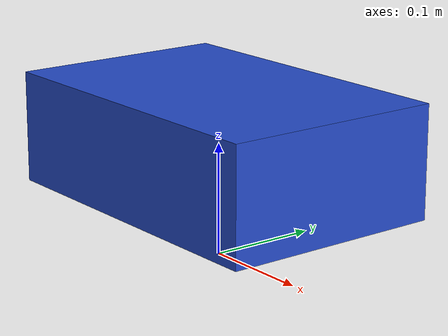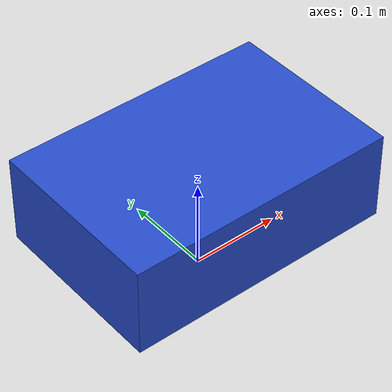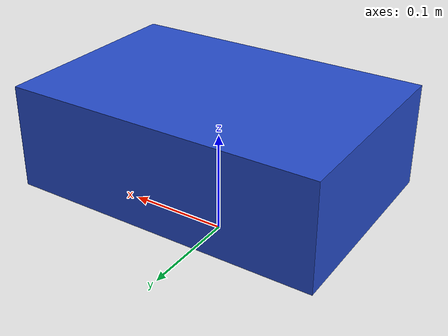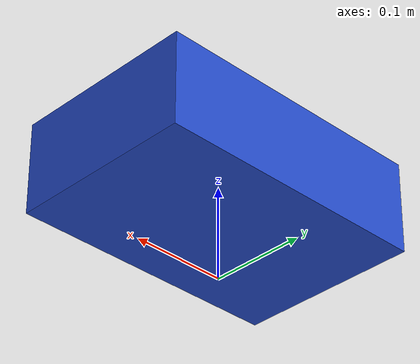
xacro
<?xml version="1.0"?>

<robot xmlns:xacro="http://www.ros.org/wiki/xacro">

  <!-- Robot Dimensions -->
  <xacro:property name="base_length" value="0.30"/>
  <xacro:property name="base_width"  value="0.20"/>
  <xacro:property name="base_height" value="0.10"/>

  <!-- Base Footprint -->
  <link name="base_footprint"/>

  <joint name="base_footprint_joint" type="fixed">
    	<parent link="base_footprint"/>
    	<child link="base_link"/>
    	<origin xyz="0 0 0.05" rpy="0 0 0"/>
  </joint>

  <!-- Base Link -->
  <link name="base_link">

    <visual>
      <origin xyz="0 0 ${base_height/2}" rpy="0 0 0"/>
      <geometry>
        <box size="${base_length} ${base_width} ${base_height}"/>
      </geometry>
      <material name="blue"/>
    </visual>

    <collision>
      <origin xyz="0 0 ${base_height/2}" rpy="0 0 0"/>
      <geometry>
        <box size="${base_length} ${base_width} ${base_height}"/>
      </geometry>
    </collision>

    <xacro:box_inertia
      mass="5.0"
      x="${base_length}"
      y="${base_width}"
      z="${base_height}"/>

  </link>

</robot>
